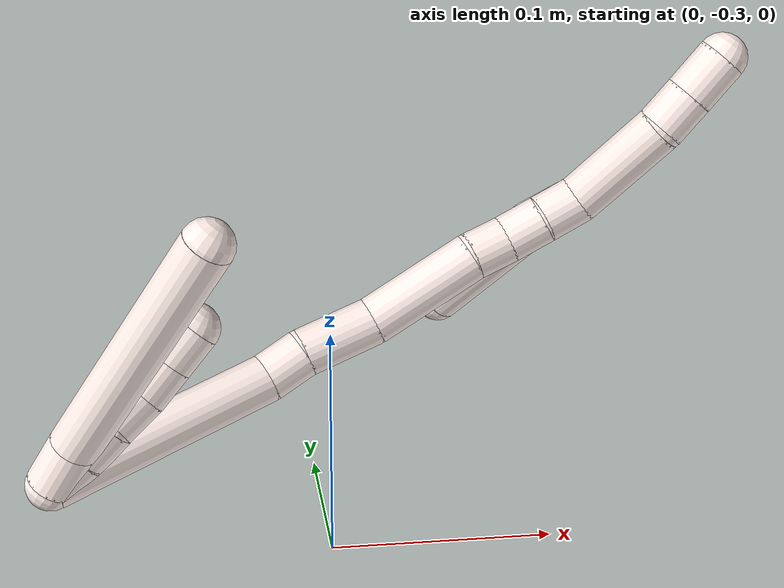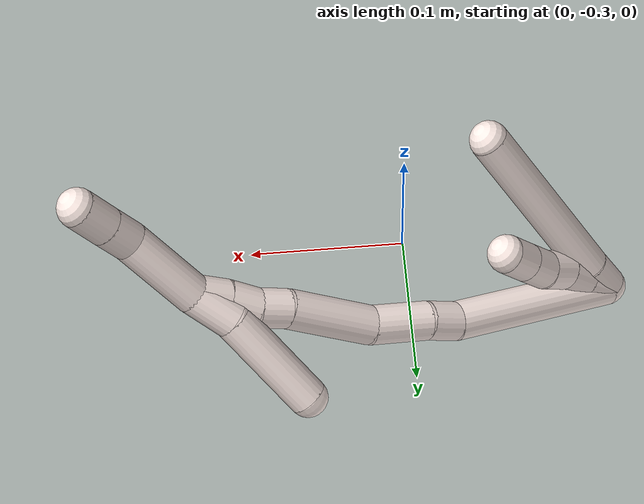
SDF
<sdf version="1.7">
 <world name="default">
  <model name="11">
   <static>0</static>
   <link name="11">
    <collision name="collision-cylinder-e_1_2_8">
     <pose>-0.000309 -0.000933 0.011935 0.078005 -0.025832 -0.001008</pose>
     <geometry><cylinder><radius>0.0125</radius><length>0.02395</length></cylinder></geometry>
     <surface>
      <friction><ode><mu>1.16</mu><mu2>1.16</mu2><slip1>0</slip1><slip2>0</slip2></ode></friction>
      <contact><ode><kp>1e+06</kp><kd>1</kd><max_vel>0</max_vel><min_depth>0.001</min_depth></ode></contact>
     </surface>
    </collision>
    <visual name="visual-cylinder-e_1_2_8">
     <pose>-0.000309 -0.000933 0.011935 0.078005 -0.025832 -0.001008</pose>
     <geometry><cylinder><radius>0.0125</radius><length>0.02395</length></cylinder></geometry>
     <material><ambient>1 0.933333 0.909804 1</ambient></material>
    </visual>
    <collision name="collision-cylinder-e_2_8_6">
     <pose>0.001106 -0.012046 0.086043 0.162295 0.027367 0.002226</pose>
     <geometry><cylinder><radius>0.0125</radius><length>0.12605</length></cylinder></geometry>
     <surface>
      <friction><ode><mu>1.16</mu><mu2>1.16</mu2><slip1>0</slip1><slip2>0</slip2></ode></friction>
      <contact><ode><kp>1e+06</kp><kd>1</kd><max_vel>0</max_vel><min_depth>0.001</min_depth></ode></contact>
     </surface>
    </collision>
    <visual name="visual-cylinder-e_2_8_6">
     <pose>0.001106 -0.012046 0.086043 0.162295 0.027367 0.002226</pose>
     <geometry><cylinder><radius>0.0125</radius><length>0.12605</length></cylinder></geometry>
     <material><ambient>1 0.933333 0.909804 1</ambient></material>
    </visual>
    <collision name="collision-cylinder-e_1_2_9">
     <pose>0.001828 0.002357 0.009545 -0.242098 0.183864 -0.022428</pose>
     <geometry><cylinder><radius>0.0125</radius><length>0.02</length></cylinder></geometry>
     <surface>
      <friction><ode><mu>1.16</mu><mu2>1.16</mu2><slip1>0</slip1><slip2>0</slip2></ode></friction>
      <contact><ode><kp>1e+06</kp><kd>1</kd><max_vel>0</max_vel><min_depth>0.001</min_depth></ode></contact>
     </surface>
    </collision>
    <visual name="visual-cylinder-e_1_2_9">
     <pose>0.001828 0.002357 0.009545 -0.242098 0.183864 -0.022428</pose>
     <geometry><cylinder><radius>0.0125</radius><length>0.02</length></cylinder></geometry>
     <material><ambient>1 0.933333 0.909804 1</ambient></material>
    </visual>
    <collision name="collision-cylinder-e_2_9_10">
     <pose>0.004744 0.007045 0.028753 -0.236694 0.109001 -0.012973</pose>
     <geometry><cylinder><radius>0.0125</radius><length>0.02</length></cylinder></geometry>
     <surface>
      <friction><ode><mu>1.16</mu><mu2>1.16</mu2><slip1>0</slip1><slip2>0</slip2></ode></friction>
      <contact><ode><kp>1e+06</kp><kd>1</kd><max_vel>0</max_vel><min_depth>0.001</min_depth></ode></contact>
     </surface>
    </collision>
    <visual name="visual-cylinder-e_2_9_10">
     <pose>0.004744 0.007045 0.028753 -0.236694 0.109001 -0.012973</pose>
     <geometry><cylinder><radius>0.0125</radius><length>0.02</length></cylinder></geometry>
     <material><ambient>1 0.933333 0.909804 1</ambient></material>
    </visual>
    <collision name="collision-cylinder-e_3_10_11">
     <pose>0.006937 0.013965 0.047233 -0.479911 0.110692 -0.027109</pose>
     <geometry><cylinder><radius>0.0125</radius><length>0.02</length></cylinder></geometry>
     <surface>
      <friction><ode><mu>1.16</mu><mu2>1.16</mu2><slip1>0</slip1><slip2>0</slip2></ode></friction>
      <contact><ode><kp>1e+06</kp><kd>1</kd><max_vel>0</max_vel><min_depth>0.001</min_depth></ode></contact>
     </surface>
    </collision>
    <visual name="visual-cylinder-e_3_10_11">
     <pose>0.006937 0.013965 0.047233 -0.479911 0.110692 -0.027109</pose>
     <geometry><cylinder><radius>0.0125</radius><length>0.02</length></cylinder></geometry>
     <material><ambient>1 0.933333 0.909804 1</ambient></material>
    </visual>
    <collision name="collision-cylinder-e_4_11_12">
     <pose>0.008304 0.021104 0.065714 -0.258022 0.026265 -0.003408</pose>
     <geometry><cylinder><radius>0.0125</radius><length>0.02</length></cylinder></geometry>
     <surface>
      <friction><ode><mu>1.16</mu><mu2>1.16</mu2><slip1>0</slip1><slip2>0</slip2></ode></friction>
      <contact><ode><kp>1e+06</kp><kd>1</kd><max_vel>0</max_vel><min_depth>0.001</min_depth></ode></contact>
     </surface>
    </collision>
    <visual name="visual-cylinder-e_4_11_12">
     <pose>0.008304 0.021104 0.065714 -0.258022 0.026265 -0.003408</pose>
     <geometry><cylinder><radius>0.0125</radius><length>0.02</length></cylinder></geometry>
     <material><ambient>1 0.933333 0.909804 1</ambient></material>
    </visual>
    <collision name="collision-cylinder-e_5_12_5">
     <pose>0.008812 0.026121 0.085068 -0.24922 0.024546 -0.003075</pose>
     <geometry><cylinder><radius>0.0125</radius><length>0.02</length></cylinder></geometry>
     <surface>
      <friction><ode><mu>1.16</mu><mu2>1.16</mu2><slip1>0</slip1><slip2>0</slip2></ode></friction>
      <contact><ode><kp>1e+06</kp><kd>1</kd><max_vel>0</max_vel><min_depth>0.001</min_depth></ode></contact>
     </surface>
    </collision>
    <visual name="visual-cylinder-e_5_12_5">
     <pose>0.008812 0.026121 0.085068 -0.24922 0.024546 -0.003075</pose>
     <geometry><cylinder><radius>0.0125</radius><length>0.02</length></cylinder></geometry>
     <material><ambient>1 0.933333 0.909804 1</ambient></material>
    </visual>
    <collision name="collision-cylinder-e_1_2_13">
     <pose>0.023207 0.033672 0.040784 -0.690162 0.413497 -0.150507</pose>
     <geometry><cylinder><radius>0.0125</radius><length>0.115511</length></cylinder></geometry>
     <surface>
      <friction><ode><mu>1.16</mu><mu2>1.16</mu2><slip1>0</slip1><slip2>0</slip2></ode></friction>
      <contact><ode><kp>1e+06</kp><kd>1</kd><max_vel>0</max_vel><min_depth>0.001</min_depth></ode></contact>
     </surface>
    </collision>
    <visual name="visual-cylinder-e_1_2_13">
     <pose>0.023207 0.033672 0.040784 -0.690162 0.413497 -0.150507</pose>
     <geometry><cylinder><radius>0.0125</radius><length>0.115511</length></cylinder></geometry>
     <material><ambient>1 0.933333 0.909804 1</ambient></material>
    </visual>
    <collision name="collision-cylinder-e_2_13_14">
     <pose>0.049761 0.071945 0.091054 -0.45164 0.307433 -0.071161</pose>
     <geometry><cylinder><radius>0.0125</radius><length>0.022122</length></cylinder></geometry>
     <surface>
      <friction><ode><mu>1.16</mu><mu2>1.16</mu2><slip1>0</slip1><slip2>0</slip2></ode></friction>
      <contact><ode><kp>1e+06</kp><kd>1</kd><max_vel>0</max_vel><min_depth>0.001</min_depth></ode></contact>
     </surface>
    </collision>
    <visual name="visual-cylinder-e_2_13_14">
     <pose>0.049761 0.071945 0.091054 -0.45164 0.307433 -0.071161</pose>
     <geometry><cylinder><radius>0.0125</radius><length>0.022122</length></cylinder></geometry>
     <material><ambient>1 0.933333 0.909804 1</ambient></material>
    </visual>
    <collision name="collision-cylinder-e_3_14_15">
     <pose>0.061944 0.085693 0.11548 -0.549358 0.46713 -0.133885</pose>
     <geometry><cylinder><radius>0.0125</radius><length>0.039241</length></cylinder></geometry>
     <surface>
      <friction><ode><mu>1.16</mu><mu2>1.16</mu2><slip1>0</slip1><slip2>0</slip2></ode></friction>
      <contact><ode><kp>1e+06</kp><kd>1</kd><max_vel>0</max_vel><min_depth>0.001</min_depth></ode></contact>
     </surface>
    </collision>
    <visual name="visual-cylinder-e_3_14_15">
     <pose>0.061944 0.085693 0.11548 -0.549358 0.46713 -0.133885</pose>
     <geometry><cylinder><radius>0.0125</radius><length>0.039241</length></cylinder></geometry>
     <material><ambient>1 0.933333 0.909804 1</ambient></material>
    </visual>
    <collision name="collision-cylinder-e_4_15_16">
     <pose>0.081086 0.102974 0.157608 -0.290706 0.348372 -0.051507</pose>
     <geometry><cylinder><radius>0.0125</radius><length>0.060384</length></cylinder></geometry>
     <surface>
      <friction><ode><mu>1.16</mu><mu2>1.16</mu2><slip1>0</slip1><slip2>0</slip2></ode></friction>
      <contact><ode><kp>1e+06</kp><kd>1</kd><max_vel>0</max_vel><min_depth>0.001</min_depth></ode></contact>
     </surface>
    </collision>
    <visual name="visual-cylinder-e_4_15_16">
     <pose>0.081086 0.102974 0.157608 -0.290706 0.348372 -0.051507</pose>
     <geometry><cylinder><radius>0.0125</radius><length>0.060384</length></cylinder></geometry>
     <material><ambient>1 0.933333 0.909804 1</ambient></material>
    </visual>
    <collision name="collision-cylinder-e_5_16_17">
     <pose>0.095835 0.11504 0.193076 -0.443279 0.451306 -0.103368</pose>
     <geometry><cylinder><radius>0.0125</radius><length>0.020372</length></cylinder></geometry>
     <surface>
      <friction><ode><mu>1.16</mu><mu2>1.16</mu2><slip1>0</slip1><slip2>0</slip2></ode></friction>
      <contact><ode><kp>1e+06</kp><kd>1</kd><max_vel>0</max_vel><min_depth>0.001</min_depth></ode></contact>
     </surface>
    </collision>
    <visual name="visual-cylinder-e_5_16_17">
     <pose>0.095835 0.11504 0.193076 -0.443279 0.451306 -0.103368</pose>
     <geometry><cylinder><radius>0.0125</radius><length>0.020372</length></cylinder></geometry>
     <material><ambient>1 0.933333 0.909804 1</ambient></material>
    </visual>
    <collision name="collision-cylinder-e_6_17_18">
     <pose>0.104573 0.120825 0.210811 -0.193655 0.419348 -0.041334</pose>
     <geometry><cylinder><radius>0.0125</radius><length>0.021097</length></cylinder></geometry>
     <surface>
      <friction><ode><mu>1.16</mu><mu2>1.16</mu2><slip1>0</slip1><slip2>0</slip2></ode></friction>
      <contact><ode><kp>1e+06</kp><kd>1</kd><max_vel>0</max_vel><min_depth>0.001</min_depth></ode></contact>
     </surface>
    </collision>
    <visual name="visual-cylinder-e_6_17_18">
     <pose>0.104573 0.120825 0.210811 -0.193655 0.419348 -0.041334</pose>
     <geometry><cylinder><radius>0.0125</radius><length>0.021097</length></cylinder></geometry>
     <material><ambient>1 0.933333 0.909804 1</ambient></material>
    </visual>
    <collision name="collision-cylinder-e_7_18_1">
     <pose>0.113064 0.125869 0.229504 -0.33248 0.405511 -0.068961</pose>
     <geometry><cylinder><radius>0.0125</radius><length>0.021273</length></cylinder></geometry>
     <surface>
      <friction><ode><mu>1.16</mu><mu2>1.16</mu2><slip1>0</slip1><slip2>0</slip2></ode></friction>
      <contact><ode><kp>1e+06</kp><kd>1</kd><max_vel>0</max_vel><min_depth>0.001</min_depth></ode></contact>
     </surface>
    </collision>
    <visual name="visual-cylinder-e_7_18_1">
     <pose>0.113064 0.125869 0.229504 -0.33248 0.405511 -0.068961</pose>
     <geometry><cylinder><radius>0.0125</radius><length>0.021273</length></cylinder></geometry>
     <material><ambient>1 0.933333 0.909804 1</ambient></material>
    </visual>
    <collision name="collision-cylinder-e_1_1_19">
     <pose>0.11124 0.130999 0.225672 -2.99425 -0.4275 2.48611</pose>
     <geometry><cylinder><radius>0.0125</radius><length>0.02904</length></cylinder></geometry>
     <surface>
      <friction><ode><mu>1.16</mu><mu2>1.16</mu2><slip1>0</slip1><slip2>0</slip2></ode></friction>
      <contact><ode><kp>1e+06</kp><kd>1</kd><max_vel>0</max_vel><min_depth>0.001</min_depth></ode></contact>
     </surface>
    </collision>
    <visual name="visual-cylinder-e_1_1_19">
     <pose>0.11124 0.130999 0.225672 -2.99425 -0.4275 2.48611</pose>
     <geometry><cylinder><radius>0.0125</radius><length>0.02904</length></cylinder></geometry>
     <material><ambient>1 0.933333 0.909804 1</ambient></material>
    </visual>
    <collision name="collision-cylinder-e_2_19_4">
     <pose>0.096836 0.142826 0.179575 -2.85072 -0.238565 1.37157</pose>
     <geometry><cylinder><radius>0.0125</radius><length>0.07096</length></cylinder></geometry>
     <surface>
      <friction><ode><mu>1.16</mu><mu2>1.16</mu2><slip1>0</slip1><slip2>0</slip2></ode></friction>
      <contact><ode><kp>1e+06</kp><kd>1</kd><max_vel>0</max_vel><min_depth>0.001</min_depth></ode></contact>
     </surface>
    </collision>
    <visual name="visual-cylinder-e_2_19_4">
     <pose>0.096836 0.142826 0.179575 -2.85072 -0.238565 1.37157</pose>
     <geometry><cylinder><radius>0.0125</radius><length>0.07096</length></cylinder></geometry>
     <material><ambient>1 0.933333 0.909804 1</ambient></material>
    </visual>
    <collision name="collision-cylinder-e_1_1_20">
     <pose>0.122897 0.125104 0.265441 0.147063 0.20589 0.01522</pose>
     <geometry><cylinder><radius>0.0125</radius><length>0.055145</length></cylinder></geometry>
     <surface>
      <friction><ode><mu>1.16</mu><mu2>1.16</mu2><slip1>0</slip1><slip2>0</slip2></ode></friction>
      <contact><ode><kp>1e+06</kp><kd>1</kd><max_vel>0</max_vel><min_depth>0.001</min_depth></ode></contact>
     </surface>
    </collision>
    <visual name="visual-cylinder-e_1_1_20">
     <pose>0.122897 0.125104 0.265441 0.147063 0.20589 0.01522</pose>
     <geometry><cylinder><radius>0.0125</radius><length>0.055145</length></cylinder></geometry>
     <material><ambient>1 0.933333 0.909804 1</ambient></material>
    </visual>
    <collision name="collision-cylinder-e_2_20_21">
     <pose>0.129377 0.121766 0.302541 -0.059202 0.080778 -0.002393</pose>
     <geometry><cylinder><radius>0.0125</radius><length>0.020906</length></cylinder></geometry>
     <surface>
      <friction><ode><mu>1.16</mu><mu2>1.16</mu2><slip1>0</slip1><slip2>0</slip2></ode></friction>
      <contact><ode><kp>1e+06</kp><kd>1</kd><max_vel>0</max_vel><min_depth>0.001</min_depth></ode></contact>
     </surface>
    </collision>
    <visual name="visual-cylinder-e_2_20_21">
     <pose>0.129377 0.121766 0.302541 -0.059202 0.080778 -0.002393</pose>
     <geometry><cylinder><radius>0.0125</radius><length>0.020906</length></cylinder></geometry>
     <material><ambient>1 0.933333 0.909804 1</ambient></material>
    </visual>
    <collision name="collision-cylinder-e_3_21_3">
     <pose>0.131093 0.122994 0.324868 -0.051274 0.072925 -0.001871</pose>
     <geometry><cylinder><radius>0.0125</radius><length>0.023949</length></cylinder></geometry>
     <surface>
      <friction><ode><mu>1.16</mu><mu2>1.16</mu2><slip1>0</slip1><slip2>0</slip2></ode></friction>
      <contact><ode><kp>1e+06</kp><kd>1</kd><max_vel>0</max_vel><min_depth>0.001</min_depth></ode></contact>
     </surface>
    </collision>
    <visual name="visual-cylinder-e_3_21_3">
     <pose>0.131093 0.122994 0.324868 -0.051274 0.072925 -0.001871</pose>
     <geometry><cylinder><radius>0.0125</radius><length>0.023949</length></cylinder></geometry>
     <material><ambient>1 0.933333 0.909804 1</ambient></material>
    </visual>
    <collision name="collision-sphere-3">
     <pose>0.131965 0.123607 0.336795 0 -0 0</pose>
     <geometry><sphere><radius>0.0125</radius></sphere></geometry>
     <surface>
      <friction><ode><mu>1.16</mu><mu2>1.16</mu2><slip1>0</slip1><slip2>0</slip2></ode></friction>
      <contact><ode><kp>1e+06</kp><kd>1</kd><max_vel>0</max_vel><min_depth>0.001</min_depth></ode></contact>
     </surface>
    </collision>
    <visual name="visual-sphere-3">
     <pose>0.131965 0.123607 0.336795 0 -0 0</pose>
     <geometry><sphere><radius>0.0125</radius></sphere></geometry>
     <material><ambient>1 0.933333 0.909804 1</ambient></material>
    </visual>
    <collision name="collision-sphere-21">
     <pose>0.13022 0.122382 0.312942 0 -0 0</pose>
     <geometry><sphere><radius>0.0125</radius></sphere></geometry>
     <surface>
      <friction><ode><mu>1.16</mu><mu2>1.16</mu2><slip1>0</slip1><slip2>0</slip2></ode></friction>
      <contact><ode><kp>1e+06</kp><kd>1</kd><max_vel>0</max_vel><min_depth>0.001</min_depth></ode></contact>
     </surface>
    </collision>
    <visual name="visual-sphere-21">
     <pose>0.13022 0.122382 0.312942 0 -0 0</pose>
     <geometry><sphere><radius>0.0125</radius></sphere></geometry>
     <material><ambient>1 0.933333 0.909804 1</ambient></material>
    </visual>
    <collision name="collision-sphere-20">
     <pose>0.128534 0.121149 0.29214 0 -0 0</pose>
     <geometry><sphere><radius>0.0125</radius></sphere></geometry>
     <surface>
      <friction><ode><mu>1.16</mu><mu2>1.16</mu2><slip1>0</slip1><slip2>0</slip2></ode></friction>
      <contact><ode><kp>1e+06</kp><kd>1</kd><max_vel>0</max_vel><min_depth>0.001</min_depth></ode></contact>
     </surface>
    </collision>
    <visual name="visual-sphere-20">
     <pose>0.128534 0.121149 0.29214 0 -0 0</pose>
     <geometry><sphere><radius>0.0125</radius></sphere></geometry>
     <material><ambient>1 0.933333 0.909804 1</ambient></material>
    </visual>
    <collision name="collision-sphere-4">
     <pose>0.088451 0.152713 0.146548 0 -0 0</pose>
     <geometry><sphere><radius>0.0125</radius></sphere></geometry>
     <surface>
      <friction><ode><mu>1.16</mu><mu2>1.16</mu2><slip1>0</slip1><slip2>0</slip2></ode></friction>
      <contact><ode><kp>1e+06</kp><kd>1</kd><max_vel>0</max_vel><min_depth>0.001</min_depth></ode></contact>
     </surface>
    </collision>
    <visual name="visual-sphere-4">
     <pose>0.088451 0.152713 0.146548 0 -0 0</pose>
     <geometry><sphere><radius>0.0125</radius></sphere></geometry>
     <material><ambient>1 0.933333 0.909804 1</ambient></material>
    </visual>
    <collision name="collision-sphere-11">
     <pose>0.008042 0.018553 0.056049 0 -0 0</pose>
     <geometry><sphere><radius>0.0125</radius></sphere></geometry>
     <surface>
      <friction><ode><mu>1.16</mu><mu2>1.16</mu2><slip1>0</slip1><slip2>0</slip2></ode></friction>
      <contact><ode><kp>1e+06</kp><kd>1</kd><max_vel>0</max_vel><min_depth>0.001</min_depth></ode></contact>
     </surface>
    </collision>
    <visual name="visual-sphere-11">
     <pose>0.008042 0.018553 0.056049 0 -0 0</pose>
     <geometry><sphere><radius>0.0125</radius></sphere></geometry>
     <material><ambient>1 0.933333 0.909804 1</ambient></material>
    </visual>
    <collision name="collision-sphere-10">
     <pose>0.005832 0.009376 0.038416 0 -0 0</pose>
     <geometry><sphere><radius>0.0125</radius></sphere></geometry>
     <surface>
      <friction><ode><mu>1.16</mu><mu2>1.16</mu2><slip1>0</slip1><slip2>0</slip2></ode></friction>
      <contact><ode><kp>1e+06</kp><kd>1</kd><max_vel>0</max_vel><min_depth>0.001</min_depth></ode></contact>
     </surface>
    </collision>
    <visual name="visual-sphere-10">
     <pose>0.005832 0.009376 0.038416 0 -0 0</pose>
     <geometry><sphere><radius>0.0125</radius></sphere></geometry>
     <material><ambient>1 0.933333 0.909804 1</ambient></material>
    </visual>
    <collision name="collision-sphere-6">
     <pose>0.002831 -0.022226 0.148216 0 -0 0</pose>
     <geometry><sphere><radius>0.0125</radius></sphere></geometry>
     <surface>
      <friction><ode><mu>1.16</mu><mu2>1.16</mu2><slip1>0</slip1><slip2>0</slip2></ode></friction>
      <contact><ode><kp>1e+06</kp><kd>1</kd><max_vel>0</max_vel><min_depth>0.001</min_depth></ode></contact>
     </surface>
    </collision>
    <visual name="visual-sphere-6">
     <pose>0.002831 -0.022226 0.148216 0 -0 0</pose>
     <geometry><sphere><radius>0.0125</radius></sphere></geometry>
     <material><ambient>1 0.933333 0.909804 1</ambient></material>
    </visual>
    <collision name="collision-sphere-9">
     <pose>0.003657 0.004714 0.019089 0 -0 0</pose>
     <geometry><sphere><radius>0.0125</radius></sphere></geometry>
     <surface>
      <friction><ode><mu>1.16</mu><mu2>1.16</mu2><slip1>0</slip1><slip2>0</slip2></ode></friction>
      <contact><ode><kp>1e+06</kp><kd>1</kd><max_vel>0</max_vel><min_depth>0.001</min_depth></ode></contact>
     </surface>
    </collision>
    <visual name="visual-sphere-9">
     <pose>0.003657 0.004714 0.019089 0 -0 0</pose>
     <geometry><sphere><radius>0.0125</radius></sphere></geometry>
     <material><ambient>1 0.933333 0.909804 1</ambient></material>
    </visual>
    <collision name="collision-sphere-2">
     <geometry><sphere><radius>0.0125</radius></sphere></geometry>
     <surface>
      <friction><ode><mu>1.16</mu><mu2>1.16</mu2><slip1>0</slip1><slip2>0</slip2></ode></friction>
      <contact><ode><kp>1e+06</kp><kd>1</kd><max_vel>0</max_vel><min_depth>0.001</min_depth></ode></contact>
     </surface>
    </collision>
    <visual name="visual-sphere-2">
     <geometry><sphere><radius>0.0125</radius></sphere></geometry>
     <material><ambient>1 0.933333 0.909804 1</ambient></material>
    </visual>
    <collision name="collision-sphere-19">
     <pose>0.10522 0.132939 0.212602 0 -0 0</pose>
     <geometry><sphere><radius>0.0125</radius></sphere></geometry>
     <surface>
      <friction><ode><mu>1.16</mu><mu2>1.16</mu2><slip1>0</slip1><slip2>0</slip2></ode></friction>
      <contact><ode><kp>1e+06</kp><kd>1</kd><max_vel>0</max_vel><min_depth>0.001</min_depth></ode></contact>
     </surface>
    </collision>
    <visual name="visual-sphere-19">
     <pose>0.10522 0.132939 0.212602 0 -0 0</pose>
     <geometry><sphere><radius>0.0125</radius></sphere></geometry>
     <material><ambient>1 0.933333 0.909804 1</ambient></material>
    </visual>
    <collision name="collision-sphere-8">
     <pose>-0.000619 -0.001866 0.023869 0 -0 0</pose>
     <geometry><sphere><radius>0.0125</radius></sphere></geometry>
     <surface>
      <friction><ode><mu>1.16</mu><mu2>1.16</mu2><slip1>0</slip1><slip2>0</slip2></ode></friction>
      <contact><ode><kp>1e+06</kp><kd>1</kd><max_vel>0</max_vel><min_depth>0.001</min_depth></ode></contact>
     </surface>
    </collision>
    <visual name="visual-sphere-8">
     <pose>-0.000619 -0.001866 0.023869 0 -0 0</pose>
     <geometry><sphere><radius>0.0125</radius></sphere></geometry>
     <material><ambient>1 0.933333 0.909804 1</ambient></material>
    </visual>
    <collision name="collision-sphere-12">
     <pose>0.008567 0.023655 0.07538 0 -0 0</pose>
     <geometry><sphere><radius>0.0125</radius></sphere></geometry>
     <surface>
      <friction><ode><mu>1.16</mu><mu2>1.16</mu2><slip1>0</slip1><slip2>0</slip2></ode></friction>
      <contact><ode><kp>1e+06</kp><kd>1</kd><max_vel>0</max_vel><min_depth>0.001</min_depth></ode></contact>
     </surface>
    </collision>
    <visual name="visual-sphere-12">
     <pose>0.008567 0.023655 0.07538 0 -0 0</pose>
     <geometry><sphere><radius>0.0125</radius></sphere></geometry>
     <material><ambient>1 0.933333 0.909804 1</ambient></material>
    </visual>
    <collision name="collision-sphere-5">
     <pose>0.009058 0.028587 0.094756 0 -0 0</pose>
     <geometry><sphere><radius>0.0125</radius></sphere></geometry>
     <surface>
      <friction><ode><mu>1.16</mu><mu2>1.16</mu2><slip1>0</slip1><slip2>0</slip2></ode></friction>
      <contact><ode><kp>1e+06</kp><kd>1</kd><max_vel>0</max_vel><min_depth>0.001</min_depth></ode></contact>
     </surface>
    </collision>
    <visual name="visual-sphere-5">
     <pose>0.009058 0.028587 0.094756 0 -0 0</pose>
     <geometry><sphere><radius>0.0125</radius></sphere></geometry>
     <material><ambient>1 0.933333 0.909804 1</ambient></material>
    </visual>
    <collision name="collision-sphere-13">
     <pose>0.046414 0.067344 0.081569 0 -0 0</pose>
     <geometry><sphere><radius>0.0125</radius></sphere></geometry>
     <surface>
      <friction><ode><mu>1.16</mu><mu2>1.16</mu2><slip1>0</slip1><slip2>0</slip2></ode></friction>
      <contact><ode><kp>1e+06</kp><kd>1</kd><max_vel>0</max_vel><min_depth>0.001</min_depth></ode></contact>
     </surface>
    </collision>
    <visual name="visual-sphere-13">
     <pose>0.046414 0.067344 0.081569 0 -0 0</pose>
     <geometry><sphere><radius>0.0125</radius></sphere></geometry>
     <material><ambient>1 0.933333 0.909804 1</ambient></material>
    </visual>
    <collision name="collision-sphere-14">
     <pose>0.053108 0.076546 0.100539 0 -0 0</pose>
     <geometry><sphere><radius>0.0125</radius></sphere></geometry>
     <surface>
      <friction><ode><mu>1.16</mu><mu2>1.16</mu2><slip1>0</slip1><slip2>0</slip2></ode></friction>
      <contact><ode><kp>1e+06</kp><kd>1</kd><max_vel>0</max_vel><min_depth>0.001</min_depth></ode></contact>
     </surface>
    </collision>
    <visual name="visual-sphere-14">
     <pose>0.053108 0.076546 0.100539 0 -0 0</pose>
     <geometry><sphere><radius>0.0125</radius></sphere></geometry>
     <material><ambient>1 0.933333 0.909804 1</ambient></material>
    </visual>
    <collision name="collision-sphere-15">
     <pose>0.07078 0.09484 0.130421 0 -0 0</pose>
     <geometry><sphere><radius>0.0125</radius></sphere></geometry>
     <surface>
      <friction><ode><mu>1.16</mu><mu2>1.16</mu2><slip1>0</slip1><slip2>0</slip2></ode></friction>
      <contact><ode><kp>1e+06</kp><kd>1</kd><max_vel>0</max_vel><min_depth>0.001</min_depth></ode></contact>
     </surface>
    </collision>
    <visual name="visual-sphere-15">
     <pose>0.07078 0.09484 0.130421 0 -0 0</pose>
     <geometry><sphere><radius>0.0125</radius></sphere></geometry>
     <material><ambient>1 0.933333 0.909804 1</ambient></material>
    </visual>
    <collision name="collision-sphere-16">
     <pose>0.091393 0.111108 0.184796 0 -0 0</pose>
     <geometry><sphere><radius>0.0125</radius></sphere></geometry>
     <surface>
      <friction><ode><mu>1.16</mu><mu2>1.16</mu2><slip1>0</slip1><slip2>0</slip2></ode></friction>
      <contact><ode><kp>1e+06</kp><kd>1</kd><max_vel>0</max_vel><min_depth>0.001</min_depth></ode></contact>
     </surface>
    </collision>
    <visual name="visual-sphere-16">
     <pose>0.091393 0.111108 0.184796 0 -0 0</pose>
     <geometry><sphere><radius>0.0125</radius></sphere></geometry>
     <material><ambient>1 0.933333 0.909804 1</ambient></material>
    </visual>
    <collision name="collision-sphere-17">
     <pose>0.100278 0.118971 0.201356 0 -0 0</pose>
     <geometry><sphere><radius>0.0125</radius></sphere></geometry>
     <surface>
      <friction><ode><mu>1.16</mu><mu2>1.16</mu2><slip1>0</slip1><slip2>0</slip2></ode></friction>
      <contact><ode><kp>1e+06</kp><kd>1</kd><max_vel>0</max_vel><min_depth>0.001</min_depth></ode></contact>
     </surface>
    </collision>
    <visual name="visual-sphere-17">
     <pose>0.100278 0.118971 0.201356 0 -0 0</pose>
     <geometry><sphere><radius>0.0125</radius></sphere></geometry>
     <material><ambient>1 0.933333 0.909804 1</ambient></material>
    </visual>
    <collision name="collision-sphere-18">
     <pose>0.108868 0.122679 0.220265 0 -0 0</pose>
     <geometry><sphere><radius>0.0125</radius></sphere></geometry>
     <surface>
      <friction><ode><mu>1.16</mu><mu2>1.16</mu2><slip1>0</slip1><slip2>0</slip2></ode></friction>
      <contact><ode><kp>1e+06</kp><kd>1</kd><max_vel>0</max_vel><min_depth>0.001</min_depth></ode></contact>
     </surface>
    </collision>
    <visual name="visual-sphere-18">
     <pose>0.108868 0.122679 0.220265 0 -0 0</pose>
     <geometry><sphere><radius>0.0125</radius></sphere></geometry>
     <material><ambient>1 0.933333 0.909804 1</ambient></material>
    </visual>
    <collision name="collision-sphere-1">
     <pose>0.11726 0.129059 0.238742 0 -0 0</pose>
     <geometry><sphere><radius>0.0125</radius></sphere></geometry>
     <surface>
      <friction><ode><mu>1.16</mu><mu2>1.16</mu2><slip1>0</slip1><slip2>0</slip2></ode></friction>
      <contact><ode><kp>1e+06</kp><kd>1</kd><max_vel>0</max_vel><min_depth>0.001</min_depth></ode></contact>
     </surface>
    </collision>
    <visual name="visual-sphere-1">
     <pose>0.11726 0.129059 0.238742 0 -0 0</pose>
     <geometry><sphere><radius>0.0125</radius></sphere></geometry>
     <material><ambient>1 0.933333 0.909804 1</ambient></material>
    </visual>
    <inertial>
     <pose>0.054853 0.06511 0.130578 0 -0 0</pose>
     <mass>0.75</mass>
     <inertia>
      <ixx>0.000378</ixx>
      <ixy>0</ixy>
      <ixz>0</ixz>
      <iyy>0.00036</iyy>
      <iyz>0</iyz>
      <izz>-9.7e-05</izz>
     </inertia>
    </inertial>
   </link>
   <pose>-0.127661 -0.247868 0.016323 -0.104451 0.596373 -0.411321</pose>
  </model>
 </world>
</sdf>
